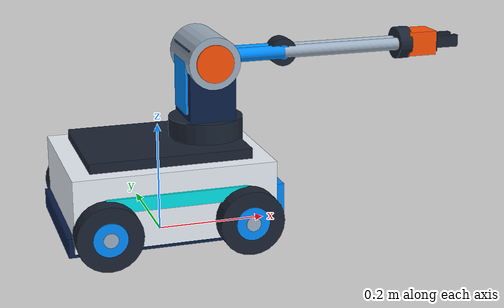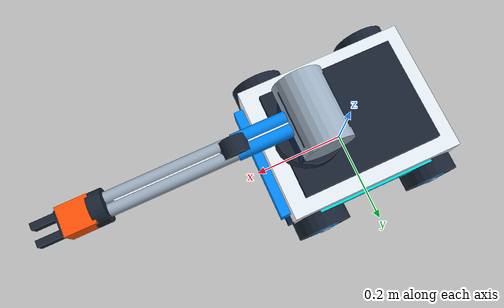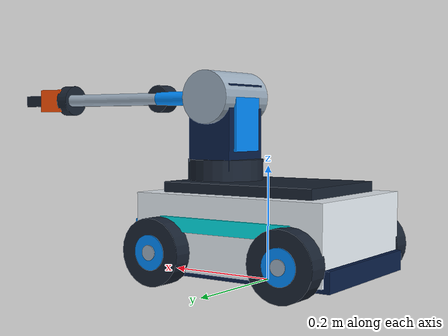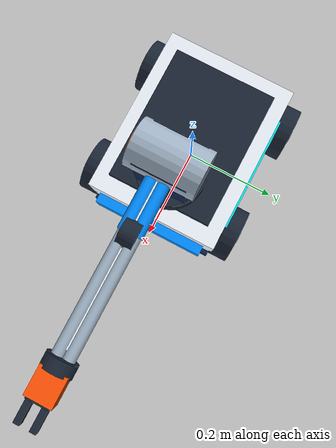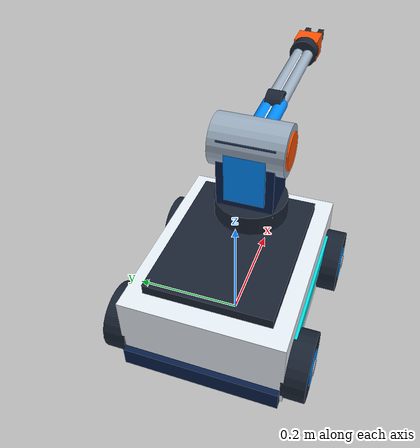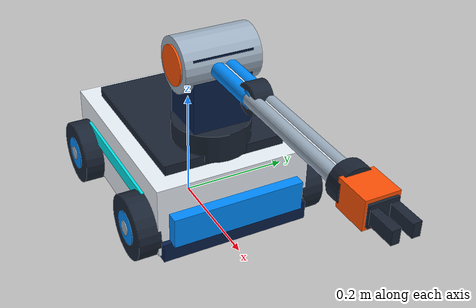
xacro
<?xml version="1.0"?>
<robot xmlns:xacro="http://www.ros.org/wiki/xacro" name="robomaster_ep_core">
  <xacro:arg name="use_sim" default="false"/>
  <xacro:arg name="use_fake_hardware" default="true"/>
  <xacro:arg name="use_gazebo" default="false"/>
  <xacro:arg name="use_mesh_collision" default="false"/>
  <xacro:arg name="prefix" default=""/>
  <xacro:arg name="initial_positions_file" default="$(find robomaster_ep_description)/config/initial_positions.yaml"/>
  <xacro:arg name="controllers_file" default="$(find robomaster_ep_gazebo)/config/ros2_controllers.yaml"/>

  <xacro:property name="p" value="$(arg prefix)"/>
  <xacro:property name="link1_length" value="0.145"/>
  <xacro:property name="link2_length" value="0.240"/>
  <xacro:property name="arm_width" value="0.035"/>
  <xacro:property name="finger_travel" value="0.041"/>

  <material name="ep_white"><color rgba="0.92 0.95 0.98 1"/></material>
  <material name="ep_navy"><color rgba="0.035 0.12 0.28 1"/></material>
  <material name="ep_blue"><color rgba="0.00 0.55 1.00 1"/></material>
  <material name="ep_cyan"><color rgba="0.00 0.90 0.92 1"/></material>
  <material name="ep_orange"><color rgba="1.00 0.32 0.02 1"/></material>
  <material name="ep_yellow"><color rgba="1.00 0.82 0.04 1"/></material>
  <material name="ep_magenta"><color rgba="0.95 0.03 0.40 1"/></material>
  <material name="ep_graphite"><color rgba="0.10 0.14 0.20 1"/></material>
  <material name="ep_silver"><color rgba="0.62 0.69 0.76 1"/></material>

  <!-- Inline the RGBA on every visual.  Ignition Fortress on Jetson otherwise
       loses repeated named-material references while URDF fixed joints collapse. -->
  <xacro:macro name="paint" params="color">
    <material name="${color}">
      <xacro:if value="${color == 'ep_white'}"><color rgba="0.92 0.95 0.98 1"/></xacro:if>
      <xacro:if value="${color == 'ep_navy'}"><color rgba="0.035 0.12 0.28 1"/></xacro:if>
      <xacro:if value="${color == 'ep_blue'}"><color rgba="0.00 0.55 1.00 1"/></xacro:if>
      <xacro:if value="${color == 'ep_cyan'}"><color rgba="0.00 0.90 0.92 1"/></xacro:if>
      <xacro:if value="${color == 'ep_orange'}"><color rgba="1.00 0.32 0.02 1"/></xacro:if>
      <xacro:if value="${color == 'ep_yellow'}"><color rgba="1.00 0.82 0.04 1"/></xacro:if>
      <xacro:if value="${color == 'ep_magenta'}"><color rgba="0.95 0.03 0.40 1"/></xacro:if>
      <xacro:if value="${color == 'ep_graphite'}"><color rgba="0.10 0.14 0.20 1"/></xacro:if>
      <xacro:if value="${color == 'ep_silver'}"><color rgba="0.62 0.69 0.76 1"/></xacro:if>
    </material>
  </xacro:macro>

  <xacro:macro name="box_link" params="name size mass color:=ep_white origin_xyz:='0 0 0'">
    <link name="${p}${name}">
      <inertial><origin xyz="${origin_xyz}"/><mass value="${mass}"/>
        <inertia ixx="${mass*(float(size.split()[1])**2+float(size.split()[2])**2)/12.0}" ixy="0" ixz="0"
                 iyy="${mass*(float(size.split()[0])**2+float(size.split()[2])**2)/12.0}" iyz="0"
                 izz="${mass*(float(size.split()[0])**2+float(size.split()[1])**2)/12.0}"/>
      </inertial>
      <visual><origin xyz="${origin_xyz}"/><geometry><box size="${size}"/></geometry><xacro:paint color="${color}"/></visual>
      <collision><origin xyz="${origin_xyz}"/><geometry><box size="${size}"/></geometry></collision>
    </link>
  </xacro:macro>

  <!-- Twin-rail arm links look closer to the EP arm while retaining one simple,
       stable collision primitive.  End caps also make each joint easy to read. -->
  <xacro:macro name="arm_link" params="name length radius mass color">
    <link name="${p}${name}">
      <inertial><origin xyz="${length/2} 0 0"/><mass value="${mass}"/>
        <inertia ixx="${mass*radius*radius/2.0}" ixy="0" ixz="0"
                 iyy="${mass*(3*radius*radius+length*length)/12.0}" iyz="0"
                 izz="${mass*(3*radius*radius+length*length)/12.0}"/>
      </inertial>
      <visual name="left_rail"><origin xyz="${length/2} ${radius*0.52} 0" rpy="0 1.57079632679 0"/>
        <geometry><cylinder radius="${radius*0.58}" length="${length}"/></geometry>
        <xacro:paint color="${color}"/>
      </visual>
      <visual name="right_rail"><origin xyz="${length/2} ${-radius*0.52} 0" rpy="0 1.57079632679 0"/>
        <geometry><cylinder radius="${radius*0.58}" length="${length}"/></geometry>
        <xacro:paint color="${color}"/>
      </visual>
      <visual name="arm_spine"><origin xyz="${length/2} 0 0"/>
        <geometry><box size="${length*0.78} ${radius*0.55} ${radius*0.72}"/></geometry>
        <xacro:paint color="ep_white"/>
      </visual>
      <visual name="joint_cap"><origin xyz="0 0 0" rpy="1.57079632679 0 0"/>
        <geometry><cylinder radius="${radius*1.28}" length="${radius*1.55}"/></geometry>
        <xacro:paint color="ep_graphite"/>
      </visual>
      <visual name="joint_badge"><origin xyz="0 ${-radius*0.79} 0" rpy="1.57079632679 0 0"/>
        <geometry><cylinder radius="${radius*0.68}" length="0.0025"/></geometry>
        <xacro:paint color="ep_blue"/>
      </visual>
      <collision><origin xyz="${length/2} 0 0"/>
        <geometry><box size="${length} ${2*radius} ${2*radius}"/></geometry>
      </collision>
    </link>
  </xacro:macro>

  <link name="${p}base_footprint"/>
  <link name="${p}base_link">
    <inertial><origin xyz="0 0 0.08"/><mass value="18.0"/>
      <inertia ixx="0.1596" ixy="0" ixz="0" iyy="0.2328" iyz="0" izz="0.3078"/>
    </inertial>
    <visual name="chassis"><origin xyz="0 0 0.09"/><geometry><box size="0.36 0.28 0.13"/></geometry><xacro:paint color="ep_white"/></visual>
    <visual name="lower_deck"><origin xyz="0 0 0.035"/><geometry><box size="0.38 0.27 0.035"/></geometry><xacro:paint color="ep_navy"/></visual>
    <visual name="top_deck"><origin xyz="0 0 0.164"/><geometry><box size="0.29 0.22 0.018"/></geometry><xacro:paint color="ep_graphite"/></visual>
    <visual name="front_bumper"><origin xyz="0.188 0 0.078"/><geometry><box size="0.025 0.24 0.055"/></geometry><xacro:paint color="ep_blue"/></visual>
    <visual name="left_stripe"><origin xyz="0 0.141 0.105"/><geometry><box size="0.25 0.008 0.025"/></geometry><xacro:paint color="ep_cyan"/></visual>
    <visual name="right_stripe"><origin xyz="0 -0.141 0.105"/><geometry><box size="0.25 0.008 0.025"/></geometry><xacro:paint color="ep_cyan"/></visual>
    <!-- Four bright-hub wheel assemblies. -->
    <xacro:macro name="wheel_visuals" params="id x y cap_y">
      <visual name="wheel_${id}"><origin xyz="${x} ${y} 0.058" rpy="1.57079632679 0 0"/><geometry><cylinder radius="0.058" length="0.040"/></geometry><xacro:paint color="ep_graphite"/></visual>
      <visual name="hub_${id}"><origin xyz="${x} ${y} 0.058" rpy="1.57079632679 0 0"/><geometry><cylinder radius="0.030" length="0.043"/></geometry><xacro:paint color="ep_blue"/></visual>
      <visual name="hubcap_${id}"><origin xyz="${x} ${cap_y} 0.058" rpy="1.57079632679 0 0"/><geometry><cylinder radius="0.013" length="0.003"/></geometry><xacro:paint color="ep_silver"/></visual>
    </xacro:macro>
    <xacro:wheel_visuals id="front_left" x="0.125" y="0.155" cap_y="0.177"/>
    <xacro:wheel_visuals id="rear_left" x="-0.125" y="0.155" cap_y="0.177"/>
    <xacro:wheel_visuals id="front_right" x="0.125" y="-0.155" cap_y="-0.177"/>
    <xacro:wheel_visuals id="rear_right" x="-0.125" y="-0.155" cap_y="-0.177"/>
    <collision><origin xyz="0 0 0.08"/><geometry><box size="0.36 0.30 0.16"/></geometry></collision>
  </link>
  <joint name="${p}base_fixed_joint" type="fixed"><parent link="${p}base_footprint"/><child link="${p}base_link"/></joint>
  <link name="${p}arm_mount_link">
    <inertial><origin xyz="0 0 0.10"/><mass value="0.30"/><inertia ixx="0.00136" ixy="0" ixz="0" iyy="0.00125" iyz="0" izz="0.00061"/></inertial>
    <visual name="turntable"><origin xyz="0 0 0.025"/><geometry><cylinder radius="0.068" length="0.050"/></geometry><xacro:paint color="ep_graphite"/></visual>
    <visual name="mast"><origin xyz="0 0 0.105"/><geometry><box size="0.085 0.105 0.155"/></geometry><xacro:paint color="ep_navy"/></visual>
    <visual name="mast_face"><origin xyz="-0.044 0 0.112"/><geometry><box size="0.006 0.074 0.095"/></geometry><xacro:paint color="ep_blue"/></visual>
    <visual name="shoulder_housing"><origin xyz="0 0 0.160" rpy="1.57079632679 0 0"/><geometry><cylinder radius="0.047" length="0.135"/></geometry><xacro:paint color="ep_silver"/></visual>
    <visual name="shoulder_cap"><origin xyz="0 -0.069 0.160" rpy="1.57079632679 0 0"/><geometry><cylinder radius="0.034" length="0.004"/></geometry><xacro:paint color="ep_orange"/></visual>
    <collision><origin xyz="0 0 0.10"/><geometry><box size="0.10 0.12 0.20"/></geometry></collision>
  </link>
  <joint name="${p}arm_mount_joint" type="fixed"><parent link="${p}base_link"/><child link="${p}arm_mount_link"/><origin xyz="0.09 0 0.16"/></joint>

  <xacro:arm_link name="upper_arm_link" length="${link1_length}" radius="0.022" mass="0.056" color="ep_blue"/>
  <joint name="${p}shoulder_joint" type="revolute">
    <parent link="${p}arm_mount_link"/><child link="${p}upper_arm_link"/><origin xyz="0 0 0.16"/><axis xyz="0 1 0"/>
    <limit lower="-1.75" upper="0.55" effort="12.0" velocity="1.5"/><dynamics damping="0.30" friction="0.08"/>
  </joint>

  <xacro:arm_link name="forearm_link" length="${link2_length}" radius="0.020" mass="0.080" color="ep_silver"/>
  <joint name="${p}elbow_joint" type="revolute">
    <parent link="${p}upper_arm_link"/><child link="${p}forearm_link"/><origin xyz="${link1_length} 0 0"/><axis xyz="0 1 0"/>
    <limit lower="-1.35" upper="2.30" effort="10.0" velocity="1.5"/><dynamics damping="0.25" friction="0.06"/>
  </joint>

  <link name="${p}gripper_base_link">
    <inertial><origin xyz="0.030 0 0"/><mass value="0.15"/><inertia ixx="0.0000625" ixy="0" ixz="0" iyy="0.0000763" iyz="0" izz="0.0000763"/></inertial>
    <visual name="wrist"><origin xyz="0 0 0" rpy="0 1.57079632679 0"/><geometry><cylinder radius="0.030" length="0.025"/></geometry><xacro:paint color="ep_graphite"/></visual>
    <visual name="palm"><origin xyz="0.035 0 0"/><geometry><box size="0.055 0.052 0.045"/></geometry><xacro:paint color="ep_orange"/></visual>
    <visual name="palm_face"><origin xyz="0.064 0 0"/><geometry><box size="0.006 0.044 0.034"/></geometry><xacro:paint color="ep_graphite"/></visual>
    <collision><origin xyz="0.030 0 0"/><geometry><box size="0.060 0.050 0.050"/></geometry></collision>
  </link>
  <joint name="${p}wrist_fixed_joint" type="fixed"><parent link="${p}forearm_link"/><child link="${p}gripper_base_link"/><origin xyz="${link2_length} 0 0"/></joint>

  <xacro:box_link name="left_finger_link" size="0.065 0.012 0.022" mass="0.025" color="ep_graphite" origin_xyz="0.0325 0 0"/>
  <joint name="${p}left_finger_joint" type="prismatic">
    <parent link="${p}gripper_base_link"/><child link="${p}left_finger_link"/><origin xyz="0.045 0.015 0"/><axis xyz="0 1 0"/>
    <limit lower="0.0" upper="${finger_travel}" effort="5.0" velocity="0.10"/><dynamics damping="0.6" friction="0.2"/>
  </joint>
  <xacro:box_link name="right_finger_link" size="0.065 0.012 0.022" mass="0.025" color="ep_graphite" origin_xyz="0.0325 0 0"/>
  <joint name="${p}right_finger_joint" type="prismatic">
    <parent link="${p}gripper_base_link"/><child link="${p}right_finger_link"/><origin xyz="0.045 -0.015 0"/><axis xyz="0 1 0"/>
    <limit lower="-${finger_travel}" upper="0.0" effort="5.0" velocity="0.10"/><dynamics damping="0.6" friction="0.2"/>
  </joint>

  <link name="${p}tool0"/><joint name="${p}tool0_joint" type="fixed"><parent link="${p}gripper_base_link"/><child link="${p}tool0"/><origin xyz="0.105 0 0"/></joint>
  <link name="${p}gripper_tcp"/><joint name="${p}tcp_joint" type="fixed"><parent link="${p}tool0"/><child link="${p}gripper_tcp"/></joint>
  <link name="${p}camera_link"/><joint name="${p}camera_joint" type="fixed"><parent link="${p}arm_mount_link"/><child link="${p}camera_link"/><origin xyz="0.03 0 0.225"/></joint>
  <link name="${p}camera_optical_frame"/><joint name="${p}camera_optical_joint" type="fixed"><parent link="${p}camera_link"/><child link="${p}camera_optical_frame"/><origin rpy="-1.570796 0 -1.570796"/></joint>

  <ros2_control name="RoboMasterEPSystem" type="system">
    <hardware>
      <xacro:if value="$(arg use_gazebo)"><plugin>gz_ros2_control/GazeboSimSystem</plugin></xacro:if>
      <xacro:unless value="$(arg use_gazebo)"><plugin>mock_components/GenericSystem</plugin><param name="calculate_dynamics">true</param></xacro:unless>
    </hardware>
    <joint name="${p}shoulder_joint"><command_interface name="position"/><state_interface name="position"><param name="initial_value">-0.35</param></state_interface><state_interface name="velocity"/></joint>
    <joint name="${p}elbow_joint"><command_interface name="position"/><state_interface name="position"><param name="initial_value">0.70</param></state_interface><state_interface name="velocity"/></joint>
    <joint name="${p}left_finger_joint"><command_interface name="position"/><state_interface name="position"><param name="initial_value">0.041</param></state_interface><state_interface name="velocity"/></joint>
    <joint name="${p}right_finger_joint"><command_interface name="position"/><state_interface name="position"><param name="initial_value">-0.041</param></state_interface><state_interface name="velocity"/></joint>
  </ros2_control>

  <xacro:if value="$(arg use_gazebo)">
    <gazebo><plugin filename="gz_ros2_control-system" name="gz_ros2_control::GazeboSimROS2ControlPlugin"><parameters>$(arg controllers_file)</parameters></plugin></gazebo>
  </xacro:if>
</robot>
